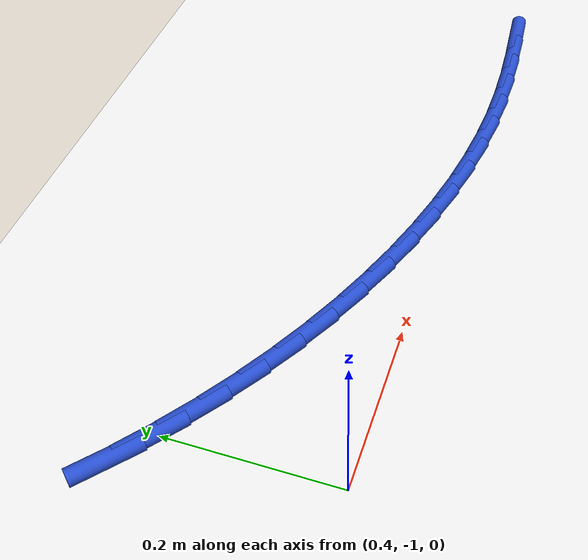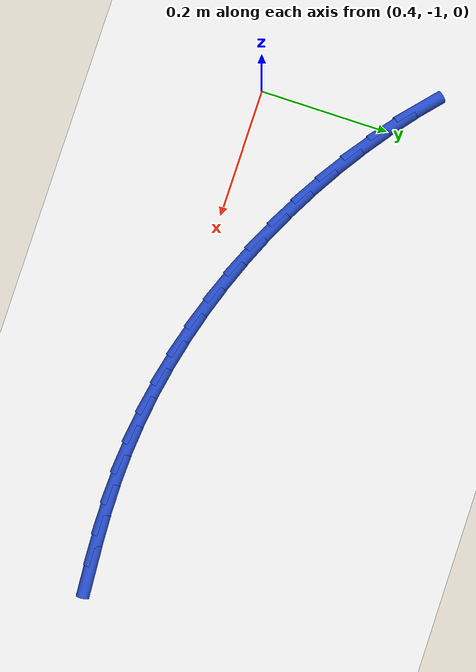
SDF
<sdf version="1.6">
 <world name="default">
  <model name="ground_plane">
   <static>1</static>
   <link name="link">
    <collision name="collision">
     <geometry><plane><normal>0 0 1</normal><size>100 100</size></plane></geometry>
     <surface><friction><ode><mu>100</mu><mu2>50</mu2></ode></friction></surface>
    </collision>
    <visual name="visual">
     <cast_shadows>0</cast_shadows>
     <geometry><plane><normal>0 0 1</normal><size>100 100</size></plane></geometry>
     <material>
      <script><uri>file://media/materials/scripts/gazebo.material</uri><name>Gazebo/WhiteGlow</name></script>
     </material>
    </visual>
   </link>
  </model>
  <model name="line">
   <link name="link_114">
    <pose>1.1662607000024774 -1.019157958194891 0.01 0 1.57 0.0677620595037735</pose>
    <collision name="collision">
     <geometry><cylinder><radius>0.01</radius><length>0.08</length></cylinder></geometry>
    </collision>
    <visual name="visual">
     <material>
      <script><name>Gazebo/Blue</name><uri>file://media/materials/scripts/gazebo.material</uri></script>
     </material>
     <geometry><cylinder><radius>0.01</radius><length>0.08</length></cylinder></geometry>
    </visual>
   </link>
   <link name="link_115">
    <pose>1.1190526562203698 -1.02236177762415 0.01 0 1.57 0.0416178847171225</pose>
    <collision name="collision">
     <geometry><cylinder><radius>0.01</radius><length>0.08</length></cylinder></geometry>
    </collision>
    <visual name="visual">
     <material>
      <script><name>Gazebo/Blue</name><uri>file://media/materials/scripts/gazebo.material</uri></script>
     </material>
     <geometry><cylinder><radius>0.01</radius><length>0.08</length></cylinder></geometry>
    </visual>
   </link>
   <link name="link_116">
    <pose>1.0719288716595543 -1.0243241029357046 0.01 0 1.57 0.005777886466976758</pose>
    <collision name="collision">
     <geometry><cylinder><radius>0.01</radius><length>0.08</length></cylinder></geometry>
    </collision>
    <visual name="visual">
     <material>
      <script><name>Gazebo/Blue</name><uri>file://media/materials/scripts/gazebo.material</uri></script>
     </material>
     <geometry><cylinder><radius>0.01</radius><length>0.08</length></cylinder></geometry>
    </visual>
   </link>
   <link name="link_117">
    <pose>1.0247856011942431 -1.024596494431312 0.01 0 1.57 -0.03944604802420346</pose>
    <collision name="collision">
     <geometry><cylinder><radius>0.01</radius><length>0.08</length></cylinder></geometry>
    </collision>
    <visual name="visual">
     <material>
      <script><name>Gazebo/Blue</name><uri>file://media/materials/scripts/gazebo.material</uri></script>
     </material>
     <geometry><cylinder><radius>0.01</radius><length>0.08</length></cylinder></geometry>
    </visual>
   </link>
   <link name="link_118">
    <pose>0.9775193483318864 -1.0227310599176784 0.01 0 1.57 -0.09064416284445996</pose>
    <collision name="collision">
     <geometry><cylinder><radius>0.01</radius><length>0.08</length></cylinder></geometry>
    </collision>
    <visual name="visual">
     <material>
      <script><name>Gazebo/Blue</name><uri>file://media/materials/scripts/gazebo.material</uri></script>
     </material>
     <geometry><cylinder><radius>0.01</radius><length>0.08</length></cylinder></geometry>
    </visual>
   </link>
   <link name="link_119">
    <pose>0.9300902708142379 -1.0184200775520984 0.01 0 1.57 -0.1409751929866054</pose>
    <collision name="collision">
     <geometry><cylinder><radius>0.01</radius><length>0.08</length></cylinder></geometry>
    </collision>
    <visual name="visual">
     <material>
      <script><name>Gazebo/Blue</name><uri>file://media/materials/scripts/gazebo.material</uri></script>
     </material>
     <geometry><cylinder><radius>0.01</radius><length>0.08</length></cylinder></geometry>
    </visual>
   </link>
   <link name="link_120">
    <pose>0.8826063401055793 -1.01168131996268 0.01 0 1.57 -0.18969102162552676</pose>
    <collision name="collision">
     <geometry><cylinder><radius>0.01</radius><length>0.08</length></cylinder></geometry>
    </collision>
    <visual name="visual">
     <material>
      <script><name>Gazebo/Blue</name><uri>file://media/materials/scripts/gazebo.material</uri></script>
     </material>
     <geometry><cylinder><radius>0.01</radius><length>0.08</length></cylinder></geometry>
    </visual>
   </link>
   <link name="link_121">
    <pose>0.8351964575434498 -1.002578648583785 0.01 0 1.57 -0.23700782606056964</pose>
    <collision name="collision">
     <geometry><cylinder><radius>0.01</radius><length>0.08</length></cylinder></geometry>
    </collision>
    <visual name="visual">
     <material>
      <script><name>Gazebo/Blue</name><uri>file://media/materials/scripts/gazebo.material</uri></script>
     </material>
     <geometry><cylinder><radius>0.01</radius><length>0.08</length></cylinder></geometry>
    </visual>
   </link>
   <link name="link_122">
    <pose>0.7879895244653892 -0.9911759248497757 0.01 0 1.57 -0.28314548930694794</pose>
    <collision name="collision">
     <geometry><cylinder><radius>0.01</radius><length>0.08</length></cylinder></geometry>
    </collision>
    <visual name="visual">
     <material>
      <script><name>Gazebo/Blue</name><uri>file://media/materials/scripts/gazebo.material</uri></script>
     </material>
     <geometry><cylinder><radius>0.01</radius><length>0.08</length></cylinder></geometry>
    </visual>
   </link>
   <link name="link_123">
    <pose>0.7411144422089336 -0.9775370101950133 0.01 0 1.57 -0.3283249484642601</pose>
    <collision name="collision">
     <geometry><cylinder><radius>0.01</radius><length>0.08</length></cylinder></geometry>
    </collision>
    <visual name="visual">
     <material>
      <script><name>Gazebo/Blue</name><uri>file://media/materials/scripts/gazebo.material</uri></script>
     </material>
     <geometry><cylinder><radius>0.01</radius><length>0.08</length></cylinder></geometry>
    </visual>
   </link>
   <link name="link_124">
    <pose>0.6947001121116227 -0.9617257660538594 0.01 0 1.57 -0.3727666067456129</pose>
    <collision name="collision">
     <geometry><cylinder><radius>0.01</radius><length>0.08</length></cylinder></geometry>
    </collision>
    <visual name="visual">
     <material>
      <script><name>Gazebo/Blue</name><uri>file://media/materials/scripts/gazebo.material</uri></script>
     </material>
     <geometry><cylinder><radius>0.01</radius><length>0.08</length></cylinder></geometry>
    </visual>
   </link>
   <link name="link_125">
    <pose>0.6488754355109957 -0.9438060538606763 0.01 0 1.57 -0.4166895453151686</pose>
    <collision name="collision">
     <geometry><cylinder><radius>0.01</radius><length>0.08</length></cylinder></geometry>
    </collision>
    <visual name="visual">
     <material>
      <script><name>Gazebo/Blue</name><uri>file://media/materials/scripts/gazebo.material</uri></script>
     </material>
     <geometry><cylinder><radius>0.01</radius><length>0.08</length></cylinder></geometry>
    </visual>
   </link>
   <link name="link_126">
    <pose>0.6037693137445891 -0.9238417350498248 0.01 0 1.57 -0.46031130402272136</pose>
    <collision name="collision">
     <geometry><cylinder><radius>0.01</radius><length>0.08</length></cylinder></geometry>
    </collision>
    <visual name="visual">
     <material>
      <script><name>Gazebo/Blue</name><uri>file://media/materials/scripts/gazebo.material</uri></script>
     </material>
     <geometry><cylinder><radius>0.01</radius><length>0.08</length></cylinder></geometry>
    </visual>
   </link>
   <link name="link_127">
    <pose>0.5595106481499433 -0.9018966710556677 0.01 0 1.57 -0.5038480312645707</pose>
    <collision name="collision">
     <geometry><cylinder><radius>0.01</radius><length>0.08</length></cylinder></geometry>
    </collision>
    <visual name="visual">
     <material>
      <script><name>Gazebo/Blue</name><uri>file://media/materials/scripts/gazebo.material</uri></script>
     </material>
     <geometry><cylinder><radius>0.01</radius><length>0.08</length></cylinder></geometry>
    </visual>
   </link>
   <link name="link_128">
    <pose>0.5162283400645952 -0.8780347233125658 0.01 0 1.57 -0.5475148277277204</pose>
    <collision name="collision">
     <geometry><cylinder><radius>0.01</radius><length>0.08</length></cylinder></geometry>
    </collision>
    <visual name="visual">
     <material>
      <script><name>Gazebo/Blue</name><uri>file://media/materials/scripts/gazebo.material</uri></script>
     </material>
     <geometry><cylinder><radius>0.01</radius><length>0.08</length></cylinder></geometry>
    </visual>
   </link>
   <link name="link_129">
    <pose>0.47405129082608366 -0.852319753254881 0.01 0 1.57 -0.5915261243126286</pose>
    <collision name="collision">
     <geometry><cylinder><radius>0.01</radius><length>0.08</length></cylinder></geometry>
    </collision>
    <visual name="visual">
     <material>
      <script><name>Gazebo/Blue</name><uri>file://media/materials/scripts/gazebo.material</uri></script>
     </material>
     <geometry><cylinder><radius>0.01</radius><length>0.08</length></cylinder></geometry>
    </visual>
   </link>
   <link name="link_130">
    <pose>0.4331084017719479 -0.8248156223169755 0.01 0 1.57 -0.6360959402036755</pose>
    <collision name="collision">
     <geometry><cylinder><radius>0.01</radius><length>0.08</length></cylinder></geometry>
    </collision>
    <visual name="visual">
     <material>
      <script><name>Gazebo/Blue</name><uri>file://media/materials/scripts/gazebo.material</uri></script>
     </material>
     <geometry><cylinder><radius>0.01</radius><length>0.08</length></cylinder></geometry>
    </visual>
   </link>
   <link name="link_131">
    <pose>0.3935285742397253 -0.7955861919332102 0.01 0 1.57 -0.6814378629783018</pose>
    <collision name="collision">
     <geometry><cylinder><radius>0.01</radius><length>0.08</length></cylinder></geometry>
    </collision>
    <visual name="visual">
     <material>
      <script><name>Gazebo/Blue</name><uri>file://media/materials/scripts/gazebo.material</uri></script>
     </material>
     <geometry><cylinder><radius>0.01</radius><length>0.08</length></cylinder></geometry>
    </visual>
   </link>
   <link name="link_132">
    <pose>0.3554407095669552 -0.764695323537948 0.01 0 1.57 -0.7277587486329687</pose>
    <collision name="collision">
     <geometry><cylinder><radius>0.01</radius><length>0.08</length></cylinder></geometry>
    </collision>
    <visual name="visual">
     <material>
      <script><name>Gazebo/Blue</name><uri>file://media/materials/scripts/gazebo.material</uri></script>
     </material>
     <geometry><cylinder><radius>0.01</radius><length>0.08</length></cylinder></geometry>
    </visual>
   </link>
  </model>
 </world>
</sdf>
